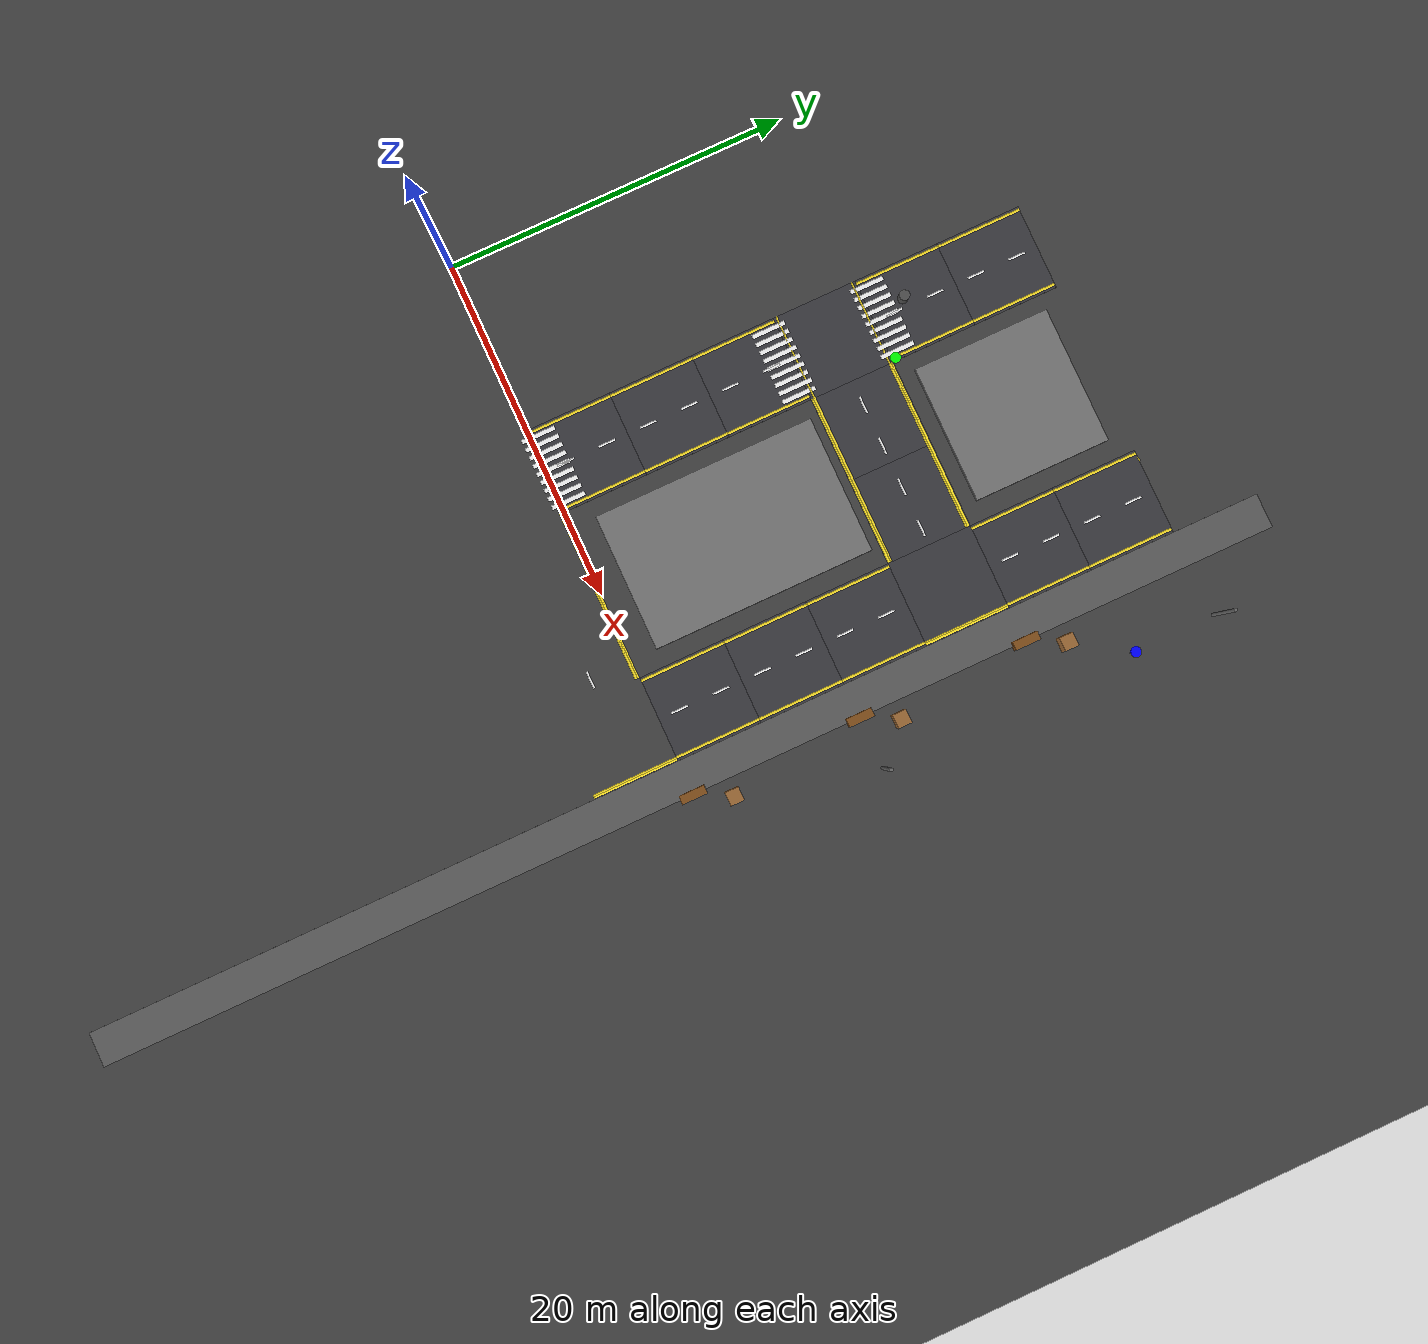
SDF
<sdf version="1.7">
 <world name="compact_city">
  <model name="ground_plane">
   <static>1</static>
   <pose>0 0 0.01 0 -0 0</pose>
   <link name="link">
    <collision name="collision">
     <geometry><plane><normal>0 0 1</normal><size>200 200</size></plane></geometry>
    </collision>
    <visual name="visual">
     <geometry><plane><normal>0 0 1</normal><size>200 200</size></plane></geometry>
     <material>
      <ambient>0.2 0.2 0.2 1</ambient>
      <diffuse>0.25 0.25 0.25 1</diffuse>
      <specular>0.1 0.1 0.1 1</specular>
     </material>
    </visual>
   </link>
  </model>
  <model name="road_tile_15">
   <static>1</static>
   <pose>12.5 27.5 0.015 0 -0 1.5708</pose>
   <link name="link">
    <collision name="collision"><geometry><box><size>5 5 0.03</size></box></geometry></collision>
    <visual name="visual">
     <geometry><box><size>5 5 0.03</size></box></geometry>
     <material>
      <ambient>0.18 0.18 0.2 1</ambient>
      <diffuse>0.22 0.22 0.24 1</diffuse>
      <specular>0.1 0.1 0.1 1</specular>
     </material>
    </visual>
   </link>
  </model>
  <model name="road_tile_16">
   <static>1</static>
   <pose>27.5 27.5 0.015 0 -0 1.5708</pose>
   <link name="link">
    <collision name="collision"><geometry><box><size>5 5 0.03</size></box></geometry></collision>
    <visual name="visual">
     <geometry><box><size>5 5 0.03</size></box></geometry>
     <material>
      <ambient>0.18 0.18 0.2 1</ambient>
      <diffuse>0.22 0.22 0.24 1</diffuse>
      <specular>0.1 0.1 0.1 1</specular>
     </material>
    </visual>
   </link>
  </model>
  <model name="road_tile_19">
   <static>1</static>
   <pose>12.5 22.5 0.015 0 -0 1.5708</pose>
   <link name="link">
    <collision name="collision"><geometry><box><size>5 5 0.03</size></box></geometry></collision>
    <visual name="visual">
     <geometry><box><size>5 5 0.03</size></box></geometry>
     <material>
      <ambient>0.18 0.18 0.2 1</ambient>
      <diffuse>0.22 0.22 0.24 1</diffuse>
      <specular>0.1 0.1 0.1 1</specular>
     </material>
    </visual>
   </link>
  </model>
  <model name="road_tile_20">
   <static>1</static>
   <pose>27.5 22.5 0.015 0 -0 1.5708</pose>
   <link name="link">
    <collision name="collision"><geometry><box><size>5 5 0.03</size></box></geometry></collision>
    <visual name="visual">
     <geometry><box><size>5 5 0.03</size></box></geometry>
     <material>
      <ambient>0.18 0.18 0.2 1</ambient>
      <diffuse>0.22 0.22 0.24 1</diffuse>
      <specular>0.1 0.1 0.1 1</specular>
     </material>
    </visual>
   </link>
  </model>
  <model name="road_tile_29">
   <static>1</static>
   <pose>12.5 17.5 0.015 0 -0 0</pose>
   <link name="link">
    <collision name="collision"><geometry><box><size>5 5 0.03</size></box></geometry></collision>
    <visual name="visual">
     <geometry><box><size>5 5 0.03</size></box></geometry>
     <material>
      <ambient>0.18 0.18 0.2 1</ambient>
      <diffuse>0.22 0.22 0.24 1</diffuse>
      <specular>0.1 0.1 0.1 1</specular>
     </material>
    </visual>
   </link>
  </model>
  <model name="road_tile_30">
   <static>1</static>
   <pose>17.5 17.5 0.015 0 -0 0</pose>
   <link name="link">
    <collision name="collision"><geometry><box><size>5 5 0.03</size></box></geometry></collision>
    <visual name="visual">
     <geometry><box><size>5 5 0.03</size></box></geometry>
     <material>
      <ambient>0.18 0.18 0.2 1</ambient>
      <diffuse>0.22 0.22 0.24 1</diffuse>
      <specular>0.1 0.1 0.1 1</specular>
     </material>
    </visual>
   </link>
  </model>
  <model name="road_tile_31">
   <static>1</static>
   <pose>22.5 17.5 0.015 0 -0 0</pose>
   <link name="link">
    <collision name="collision"><geometry><box><size>5 5 0.03</size></box></geometry></collision>
    <visual name="visual">
     <geometry><box><size>5 5 0.03</size></box></geometry>
     <material>
      <ambient>0.18 0.18 0.2 1</ambient>
      <diffuse>0.22 0.22 0.24 1</diffuse>
      <specular>0.1 0.1 0.1 1</specular>
     </material>
    </visual>
   </link>
  </model>
  <model name="road_tile_32">
   <static>1</static>
   <pose>27.5 17.5 0.015 0 -0 0</pose>
   <link name="link">
    <collision name="collision"><geometry><box><size>5 5 0.03</size></box></geometry></collision>
    <visual name="visual">
     <geometry><box><size>5 5 0.03</size></box></geometry>
     <material>
      <ambient>0.18 0.18 0.2 1</ambient>
      <diffuse>0.22 0.22 0.24 1</diffuse>
      <specular>0.1 0.1 0.1 1</specular>
     </material>
    </visual>
   </link>
  </model>
  <model name="road_tile_35">
   <static>1</static>
   <pose>12.5 12.5 0.015 0 -0 1.5708</pose>
   <link name="link">
    <collision name="collision"><geometry><box><size>5 5 0.03</size></box></geometry></collision>
    <visual name="visual">
     <geometry><box><size>5 5 0.03</size></box></geometry>
     <material>
      <ambient>0.18 0.18 0.2 1</ambient>
      <diffuse>0.22 0.22 0.24 1</diffuse>
      <specular>0.1 0.1 0.1 1</specular>
     </material>
    </visual>
   </link>
  </model>
  <model name="road_tile_36">
   <static>1</static>
   <pose>27.5 12.5 0.015 0 -0 1.5708</pose>
   <link name="link">
    <collision name="collision"><geometry><box><size>5 5 0.03</size></box></geometry></collision>
    <visual name="visual">
     <geometry><box><size>5 5 0.03</size></box></geometry>
     <material>
      <ambient>0.18 0.18 0.2 1</ambient>
      <diffuse>0.22 0.22 0.24 1</diffuse>
      <specular>0.1 0.1 0.1 1</specular>
     </material>
    </visual>
   </link>
  </model>
  <model name="road_tile_39">
   <static>1</static>
   <pose>12.5 7.5 0.015 0 -0 1.5708</pose>
   <link name="link">
    <collision name="collision"><geometry><box><size>5 5 0.03</size></box></geometry></collision>
    <visual name="visual">
     <geometry><box><size>5 5 0.03</size></box></geometry>
     <material>
      <ambient>0.18 0.18 0.2 1</ambient>
      <diffuse>0.22 0.22 0.24 1</diffuse>
      <specular>0.1 0.1 0.1 1</specular>
     </material>
    </visual>
   </link>
  </model>
  <model name="road_tile_40">
   <static>1</static>
   <pose>27.5 7.5 0.015 0 -0 1.5708</pose>
   <link name="link">
    <collision name="collision"><geometry><box><size>5 5 0.03</size></box></geometry></collision>
    <visual name="visual">
     <geometry><box><size>5 5 0.03</size></box></geometry>
     <material>
      <ambient>0.18 0.18 0.2 1</ambient>
      <diffuse>0.22 0.22 0.24 1</diffuse>
      <specular>0.1 0.1 0.1 1</specular>
     </material>
    </visual>
   </link>
  </model>
  <model name="road_tile_43">
   <static>1</static>
   <pose>12.5 2.5 0.015 0 -0 1.5708</pose>
   <link name="link">
    <collision name="collision"><geometry><box><size>5 5 0.03</size></box></geometry></collision>
    <visual name="visual">
     <geometry><box><size>5 5 0.03</size></box></geometry>
     <material>
      <ambient>0.18 0.18 0.2 1</ambient>
      <diffuse>0.22 0.22 0.24 1</diffuse>
      <specular>0.1 0.1 0.1 1</specular>
     </material>
    </visual>
   </link>
  </model>
  <model name="road_tile_44">
   <static>1</static>
   <pose>27.5 2.5 0.015 0 -0 1.5708</pose>
   <link name="link">
    <collision name="collision"><geometry><box><size>5 5 0.03</size></box></geometry></collision>
    <visual name="visual">
     <geometry><box><size>5 5 0.03</size></box></geometry>
     <material>
      <ambient>0.18 0.18 0.2 1</ambient>
      <diffuse>0.22 0.22 0.24 1</diffuse>
      <specular>0.1 0.1 0.1 1</specular>
     </material>
    </visual>
   </link>
  </model>
  <model name="sidewalk_east">
   <static>1</static>
   <pose>31 0 0.15 0 -0 0</pose>
   <link name="link">
    <collision name="collision"><geometry><box><size>2 70 0.3</size></box></geometry></collision>
    <visual name="visual">
     <geometry><box><size>2 70 0.3</size></box></geometry>
     <material>
      <ambient>0.3 0.3 0.3 1</ambient>
      <diffuse>0.35 0.35 0.35 1</diffuse>
      <specular>0.1 0.1 0.1 1</specular>
     </material>
    </visual>
   </link>
  </model>
  <model name="sidewalk_area_top_right">
   <static>1</static>
   <pose>19.9106 24.8735 0.2 0 -0 0</pose>
   <link name="link">
    <collision name="collision"><geometry><box><size>8 8 0.4</size></box></geometry></collision>
    <visual name="visual">
     <geometry><box><size>8 8 0.4</size></box></geometry>
     <material>
      <ambient>0.4 0.4 0.4 1</ambient>
      <diffuse>0.45 0.45 0.45 1</diffuse>
      <specular>0.2 0.2 0.2 1</specular>
     </material>
    </visual>
   </link>
  </model>
  <model name="sidewalk_area_mid_right">
   <static>1</static>
   <pose>19.9746 7.97936 0.2 0 -0 0</pose>
   <link name="link">
    <collision name="collision"><geometry><box><size>8 13 0.4</size></box></geometry></collision>
    <visual name="visual">
     <geometry><box><size>8 13 0.4</size></box></geometry>
     <material>
      <ambient>0.4 0.4 0.4 1</ambient>
      <diffuse>0.45 0.45 0.45 1</diffuse>
      <specular>0.2 0.2 0.2 1</specular>
     </material>
    </visual>
   </link>
  </model>
  <model name="el_219">
   <static>1</static>
   <pose>10.2 2.5 0.038 0 -0 1.5708</pose>
   <link name="link">
    <visual name="v">
     <geometry><box><size>5 0.15 0.002</size></box></geometry>
     <material><ambient>0.9 0.8 0.1 1</ambient><diffuse>0.95 0.85 0.15 1</diffuse></material>
    </visual>
   </link>
  </model>
  <model name="el_220">
   <static>1</static>
   <pose>14.8 2.5 0.038 0 -0 1.5708</pose>
   <link name="link">
    <visual name="v">
     <geometry><box><size>5 0.15 0.002</size></box></geometry>
     <material><ambient>0.9 0.8 0.1 1</ambient><diffuse>0.95 0.85 0.15 1</diffuse></material>
    </visual>
   </link>
  </model>
  <model name="el_221">
   <static>1</static>
   <pose>10.2 7.5 0.038 0 -0 1.5708</pose>
   <link name="link">
    <visual name="v">
     <geometry><box><size>5 0.15 0.002</size></box></geometry>
     <material><ambient>0.9 0.8 0.1 1</ambient><diffuse>0.95 0.85 0.15 1</diffuse></material>
    </visual>
   </link>
  </model>
  <model name="el_222">
   <static>1</static>
   <pose>14.8 7.5 0.038 0 -0 1.5708</pose>
   <link name="link">
    <visual name="v">
     <geometry><box><size>5 0.15 0.002</size></box></geometry>
     <material><ambient>0.9 0.8 0.1 1</ambient><diffuse>0.95 0.85 0.15 1</diffuse></material>
    </visual>
   </link>
  </model>
  <model name="el_223">
   <static>1</static>
   <pose>10.2 12.5 0.038 0 -0 1.5708</pose>
   <link name="link">
    <visual name="v">
     <geometry><box><size>5 0.15 0.002</size></box></geometry>
     <material><ambient>0.9 0.8 0.1 1</ambient><diffuse>0.95 0.85 0.15 1</diffuse></material>
    </visual>
   </link>
  </model>
  <model name="el_224">
   <static>1</static>
   <pose>14.8 12.5 0.038 0 -0 1.5708</pose>
   <link name="link">
    <visual name="v">
     <geometry><box><size>5 0.15 0.002</size></box></geometry>
     <material><ambient>0.9 0.8 0.1 1</ambient><diffuse>0.95 0.85 0.15 1</diffuse></material>
    </visual>
   </link>
  </model>
  <model name="el_225">
   <static>1</static>
   <pose>10.2 22.5 0.038 0 -0 1.5708</pose>
   <link name="link">
    <visual name="v">
     <geometry><box><size>5 0.15 0.002</size></box></geometry>
     <material><ambient>0.9 0.8 0.1 1</ambient><diffuse>0.95 0.85 0.15 1</diffuse></material>
    </visual>
   </link>
  </model>
  <model name="el_226">
   <static>1</static>
   <pose>14.8 22.5 0.038 0 -0 1.5708</pose>
   <link name="link">
    <visual name="v">
     <geometry><box><size>5 0.15 0.002</size></box></geometry>
     <material><ambient>0.9 0.8 0.1 1</ambient><diffuse>0.95 0.85 0.15 1</diffuse></material>
    </visual>
   </link>
  </model>
  <model name="el_227">
   <static>1</static>
   <pose>10.2 27.5 0.038 0 -0 1.5708</pose>
   <link name="link">
    <visual name="v">
     <geometry><box><size>5 0.15 0.002</size></box></geometry>
     <material><ambient>0.9 0.8 0.1 1</ambient><diffuse>0.95 0.85 0.15 1</diffuse></material>
    </visual>
   </link>
  </model>
  <model name="el_228">
   <static>1</static>
   <pose>14.8 27.5 0.038 0 -0 1.5708</pose>
   <link name="link">
    <visual name="v">
     <geometry><box><size>5 0.15 0.002</size></box></geometry>
     <material><ambient>0.9 0.8 0.1 1</ambient><diffuse>0.95 0.85 0.15 1</diffuse></material>
    </visual>
   </link>
  </model>
  <model name="el_232">
   <static>1</static>
   <pose>17.5 -0.2 0.038 0 -0 0</pose>
   <link name="link">
    <visual name="v">
     <geometry><box><size>5 0.15 0.002</size></box></geometry>
     <material><ambient>0.9 0.8 0.1 1</ambient><diffuse>0.95 0.85 0.15 1</diffuse></material>
    </visual>
   </link>
  </model>
  <model name="el_233">
   <static>1</static>
   <pose>17.5 15.2 0.038 0 -0 0</pose>
   <link name="link">
    <visual name="v">
     <geometry><box><size>5 0.15 0.002</size></box></geometry>
     <material><ambient>0.9 0.8 0.1 1</ambient><diffuse>0.95 0.85 0.15 1</diffuse></material>
    </visual>
   </link>
  </model>
  <model name="el_234">
   <static>1</static>
   <pose>17.5 19.8 0.038 0 -0 0</pose>
   <link name="link">
    <visual name="v">
     <geometry><box><size>5 0.15 0.002</size></box></geometry>
     <material><ambient>0.9 0.8 0.1 1</ambient><diffuse>0.95 0.85 0.15 1</diffuse></material>
    </visual>
   </link>
  </model>
  <model name="el_240">
   <static>1</static>
   <pose>22.5 -0.2 0.038 0 -0 0</pose>
   <link name="link">
    <visual name="v">
     <geometry><box><size>5 0.15 0.002</size></box></geometry>
     <material><ambient>0.9 0.8 0.1 1</ambient><diffuse>0.95 0.85 0.15 1</diffuse></material>
    </visual>
   </link>
  </model>
  <model name="el_241">
   <static>1</static>
   <pose>22.5 15.2 0.038 0 -0 0</pose>
   <link name="link">
    <visual name="v">
     <geometry><box><size>5 0.15 0.002</size></box></geometry>
     <material><ambient>0.9 0.8 0.1 1</ambient><diffuse>0.95 0.85 0.15 1</diffuse></material>
    </visual>
   </link>
  </model>
  <model name="el_242">
   <static>1</static>
   <pose>22.5 19.8 0.038 0 -0 0</pose>
   <link name="link">
    <visual name="v">
     <geometry><box><size>5 0.15 0.002</size></box></geometry>
     <material><ambient>0.9 0.8 0.1 1</ambient><diffuse>0.95 0.85 0.15 1</diffuse></material>
    </visual>
   </link>
  </model>
  <model name="el_251">
   <static>1</static>
   <pose>25.2 2.5 0.038 0 -0 1.5708</pose>
   <link name="link">
    <visual name="v">
     <geometry><box><size>5 0.15 0.002</size></box></geometry>
     <material><ambient>0.9 0.8 0.1 1</ambient><diffuse>0.95 0.85 0.15 1</diffuse></material>
    </visual>
   </link>
  </model>
  <model name="el_252">
   <static>1</static>
   <pose>29.8 2.5 0.038 0 -0 1.5708</pose>
   <link name="link">
    <visual name="v">
     <geometry><box><size>5 0.15 0.002</size></box></geometry>
     <material><ambient>0.9 0.8 0.1 1</ambient><diffuse>0.95 0.85 0.15 1</diffuse></material>
    </visual>
   </link>
  </model>
  <model name="el_253">
   <static>1</static>
   <pose>25.2 7.5 0.038 0 -0 1.5708</pose>
   <link name="link">
    <visual name="v">
     <geometry><box><size>5 0.15 0.002</size></box></geometry>
     <material><ambient>0.9 0.8 0.1 1</ambient><diffuse>0.95 0.85 0.15 1</diffuse></material>
    </visual>
   </link>
  </model>
  <model name="el_254">
   <static>1</static>
   <pose>29.8 7.5 0.038 0 -0 1.5708</pose>
   <link name="link">
    <visual name="v">
     <geometry><box><size>5 0.15 0.002</size></box></geometry>
     <material><ambient>0.9 0.8 0.1 1</ambient><diffuse>0.95 0.85 0.15 1</diffuse></material>
    </visual>
   </link>
  </model>
  <model name="el_255">
   <static>1</static>
   <pose>25.2 12.5 0.038 0 -0 1.5708</pose>
   <link name="link">
    <visual name="v">
     <geometry><box><size>5 0.15 0.002</size></box></geometry>
     <material><ambient>0.9 0.8 0.1 1</ambient><diffuse>0.95 0.85 0.15 1</diffuse></material>
    </visual>
   </link>
  </model>
  <model name="el_256">
   <static>1</static>
   <pose>29.8 12.5 0.038 0 -0 1.5708</pose>
   <link name="link">
    <visual name="v">
     <geometry><box><size>5 0.15 0.002</size></box></geometry>
     <material><ambient>0.9 0.8 0.1 1</ambient><diffuse>0.95 0.85 0.15 1</diffuse></material>
    </visual>
   </link>
  </model>
  <model name="el_257">
   <static>1</static>
   <pose>25.2 22.5 0.038 0 -0 1.5708</pose>
   <link name="link">
    <visual name="v">
     <geometry><box><size>5 0.15 0.002</size></box></geometry>
     <material><ambient>0.9 0.8 0.1 1</ambient><diffuse>0.95 0.85 0.15 1</diffuse></material>
    </visual>
   </link>
  </model>
  <model name="el_258">
   <static>1</static>
   <pose>29.8 22.5 0.038 0 -0 1.5708</pose>
   <link name="link">
    <visual name="v">
     <geometry><box><size>5 0.15 0.002</size></box></geometry>
     <material><ambient>0.9 0.8 0.1 1</ambient><diffuse>0.95 0.85 0.15 1</diffuse></material>
    </visual>
   </link>
  </model>
  <model name="el_259">
   <static>1</static>
   <pose>25.2 27.5 0.038 0 -0 1.5708</pose>
   <link name="link">
    <visual name="v">
     <geometry><box><size>5 0.15 0.002</size></box></geometry>
     <material><ambient>0.9 0.8 0.1 1</ambient><diffuse>0.95 0.85 0.15 1</diffuse></material>
    </visual>
   </link>
  </model>
  <model name="el_260">
   <static>1</static>
   <pose>29.8 27.5 0.038 0 -0 1.5708</pose>
   <link name="link">
    <visual name="v">
     <geometry><box><size>5 0.15 0.002</size></box></geometry>
     <material><ambient>0.9 0.8 0.1 1</ambient><diffuse>0.95 0.85 0.15 1</diffuse></material>
    </visual>
   </link>
  </model>
  <model name="ld_39">
   <static>1</static>
   <pose>12.5000 1.2500 0.038 0 -0 1.5708</pose>
   <link name="link">
    <visual name="v">
     <geometry><box><size>1 0.12 0.002</size></box></geometry>
     <material><ambient>1 1 1 1</ambient><diffuse>0.95 0.95 0.95 1</diffuse></material>
    </visual>
   </link>
  </model>
  <model name="ld_40">
   <static>1</static>
   <pose>12.5000 3.7500 0.038 0 -0 1.5708</pose>
   <link name="link">
    <visual name="v">
     <geometry><box><size>1 0.12 0.002</size></box></geometry>
     <material><ambient>1 1 1 1</ambient><diffuse>0.95 0.95 0.95 1</diffuse></material>
    </visual>
   </link>
  </model>
  <model name="ld_41">
   <static>1</static>
   <pose>12.5000 6.2500 0.038 0 -0 1.5708</pose>
   <link name="link">
    <visual name="v">
     <geometry><box><size>1 0.12 0.002</size></box></geometry>
     <material><ambient>1 1 1 1</ambient><diffuse>0.95 0.95 0.95 1</diffuse></material>
    </visual>
   </link>
  </model>
  <model name="ld_42">
   <static>1</static>
   <pose>12.5000 8.7500 0.038 0 -0 1.5708</pose>
   <link name="link">
    <visual name="v">
     <geometry><box><size>1 0.12 0.002</size></box></geometry>
     <material><ambient>1 1 1 1</ambient><diffuse>0.95 0.95 0.95 1</diffuse></material>
    </visual>
   </link>
  </model>
  <model name="ld_43">
   <static>1</static>
   <pose>12.5000 11.2500 0.038 0 -0 1.5708</pose>
   <link name="link">
    <visual name="v">
     <geometry><box><size>1 0.12 0.002</size></box></geometry>
     <material><ambient>1 1 1 1</ambient><diffuse>0.95 0.95 0.95 1</diffuse></material>
    </visual>
   </link>
  </model>
  <model name="ld_44">
   <static>1</static>
   <pose>12.5000 13.7500 0.038 0 -0 1.5708</pose>
   <link name="link">
    <visual name="v">
     <geometry><box><size>1 0.12 0.002</size></box></geometry>
     <material><ambient>1 1 1 1</ambient><diffuse>0.95 0.95 0.95 1</diffuse></material>
    </visual>
   </link>
  </model>
  <model name="ld_45">
   <static>1</static>
   <pose>12.5000 21.2500 0.038 0 -0 1.5708</pose>
   <link name="link">
    <visual name="v">
     <geometry><box><size>1 0.12 0.002</size></box></geometry>
     <material><ambient>1 1 1 1</ambient><diffuse>0.95 0.95 0.95 1</diffuse></material>
    </visual>
   </link>
  </model>
  <model name="ld_46">
   <static>1</static>
   <pose>12.5000 23.7500 0.038 0 -0 1.5708</pose>
   <link name="link">
    <visual name="v">
     <geometry><box><size>1 0.12 0.002</size></box></geometry>
     <material><ambient>1 1 1 1</ambient><diffuse>0.95 0.95 0.95 1</diffuse></material>
    </visual>
   </link>
  </model>
  <model name="ld_47">
   <static>1</static>
   <pose>12.5000 26.2500 0.038 0 -0 1.5708</pose>
   <link name="link">
    <visual name="v">
     <geometry><box><size>1 0.12 0.002</size></box></geometry>
     <material><ambient>1 1 1 1</ambient><diffuse>0.95 0.95 0.95 1</diffuse></material>
    </visual>
   </link>
  </model>
  <model name="ld_48">
   <static>1</static>
   <pose>12.5000 28.7500 0.038 0 -0 1.5708</pose>
   <link name="link">
    <visual name="v">
     <geometry><box><size>1 0.12 0.002</size></box></geometry>
     <material><ambient>1 1 1 1</ambient><diffuse>0.95 0.95 0.95 1</diffuse></material>
    </visual>
   </link>
  </model>
  <model name="ld_55">
   <static>1</static>
   <pose>27.5000 1.2500 0.038 0 -0 1.5708</pose>
   <link name="link">
    <visual name="v">
     <geometry><box><size>1 0.12 0.002</size></box></geometry>
     <material><ambient>1 1 1 1</ambient><diffuse>0.95 0.95 0.95 1</diffuse></material>
    </visual>
   </link>
  </model>
  <model name="ld_56">
   <static>1</static>
   <pose>27.5000 3.7500 0.038 0 -0 1.5708</pose>
   <link name="link">
    <visual name="v">
     <geometry><box><size>1 0.12 0.002</size></box></geometry>
     <material><ambient>1 1 1 1</ambient><diffuse>0.95 0.95 0.95 1</diffuse></material>
    </visual>
   </link>
  </model>
  <model name="ld_57">
   <static>1</static>
   <pose>27.5000 6.2500 0.038 0 -0 1.5708</pose>
   <link name="link">
    <visual name="v">
     <geometry><box><size>1 0.12 0.002</size></box></geometry>
     <material><ambient>1 1 1 1</ambient><diffuse>0.95 0.95 0.95 1</diffuse></material>
    </visual>
   </link>
  </model>
  <model name="ld_58">
   <static>1</static>
   <pose>27.5000 8.7500 0.038 0 -0 1.5708</pose>
   <link name="link">
    <visual name="v">
     <geometry><box><size>1 0.12 0.002</size></box></geometry>
     <material><ambient>1 1 1 1</ambient><diffuse>0.95 0.95 0.95 1</diffuse></material>
    </visual>
   </link>
  </model>
  <model name="ld_59">
   <static>1</static>
   <pose>27.5000 11.2500 0.038 0 -0 1.5708</pose>
   <link name="link">
    <visual name="v">
     <geometry><box><size>1 0.12 0.002</size></box></geometry>
     <material><ambient>1 1 1 1</ambient><diffuse>0.95 0.95 0.95 1</diffuse></material>
    </visual>
   </link>
  </model>
  <model name="ld_60">
   <static>1</static>
   <pose>27.5000 13.7500 0.038 0 -0 1.5708</pose>
   <link name="link">
    <visual name="v">
     <geometry><box><size>1 0.12 0.002</size></box></geometry>
     <material><ambient>1 1 1 1</ambient><diffuse>0.95 0.95 0.95 1</diffuse></material>
    </visual>
   </link>
  </model>
  <model name="ld_61">
   <static>1</static>
   <pose>27.5000 21.2500 0.038 0 -0 1.5708</pose>
   <link name="link">
    <visual name="v">
     <geometry><box><size>1 0.12 0.002</size></box></geometry>
     <material><ambient>1 1 1 1</ambient><diffuse>0.95 0.95 0.95 1</diffuse></material>
    </visual>
   </link>
  </model>
  <model name="ld_62">
   <static>1</static>
   <pose>27.5000 23.7500 0.038 0 -0 1.5708</pose>
   <link name="link">
    <visual name="v">
     <geometry><box><size>1 0.12 0.002</size></box></geometry>
     <material><ambient>1 1 1 1</ambient><diffuse>0.95 0.95 0.95 1</diffuse></material>
    </visual>
   </link>
  </model>
  <model name="ld_63">
   <static>1</static>
   <pose>27.5000 26.2500 0.038 0 -0 1.5708</pose>
   <link name="link">
    <visual name="v">
     <geometry><box><size>1 0.12 0.002</size></box></geometry>
     <material><ambient>1 1 1 1</ambient><diffuse>0.95 0.95 0.95 1</diffuse></material>
    </visual>
   </link>
  </model>
  <model name="ld_64">
   <static>1</static>
   <pose>27.5000 28.7500 0.038 0 -0 1.5708</pose>
   <link name="link">
    <visual name="v">
     <geometry><box><size>1 0.12 0.002</size></box></geometry>
     <material><ambient>1 1 1 1</ambient><diffuse>0.95 0.95 0.95 1</diffuse></material>
    </visual>
   </link>
  </model>
  <model name="ld_97">
   <static>1</static>
   <pose>16.5000 17.5000 0.038 0 0 0</pose>
   <link name="link">
    <visual name="v">
     <geometry><box><size>1 0.12 0.002</size></box></geometry>
     <material><ambient>1 1 1 1</ambient><diffuse>0.95 0.95 0.95 1</diffuse></material>
    </visual>
   </link>
  </model>
  <model name="ld_98">
   <static>1</static>
   <pose>19.0000 17.5000 0.038 0 0 0</pose>
   <link name="link">
    <visual name="v">
     <geometry><box><size>1 0.12 0.002</size></box></geometry>
     <material><ambient>1 1 1 1</ambient><diffuse>0.95 0.95 0.95 1</diffuse></material>
    </visual>
   </link>
  </model>
  <model name="ld_99">
   <static>1</static>
   <pose>21.5000 17.5000 0.038 0 0 0</pose>
   <link name="link">
    <visual name="v">
     <geometry><box><size>1 0.12 0.002</size></box></geometry>
     <material><ambient>1 1 1 1</ambient><diffuse>0.95 0.95 0.95 1</diffuse></material>
    </visual>
   </link>
  </model>
  <model name="ld_100">
   <static>1</static>
   <pose>24.0000 17.5000 0.038 0 0 0</pose>
   <link name="link">
    <visual name="v">
     <geometry><box><size>1 0.12 0.002</size></box></geometry>
     <material><ambient>1 1 1 1</ambient><diffuse>0.95 0.95 0.95 1</diffuse></material>
    </visual>
   </link>
  </model>
  <model name="ld_116">
   <static>1</static>
   <pose>24.0000 -2.5000 0.038 0 0 0</pose>
   <link name="link">
    <visual name="v">
     <geometry><box><size>1 0.12 0.002</size></box></geometry>
     <material><ambient>1 1 1 1</ambient><diffuse>0.95 0.95 0.95 1</diffuse></material>
    </visual>
   </link>
  </model>
  <model name="ie_320">
   <static>1</static>
   <pose>12.5 -0.2 0.038 0 -0 0</pose>
   <link name="link">
    <visual name="v">
     <geometry><box><size>5 0.1 0.002</size></box></geometry>
     <material><ambient>0.9 0.8 0.1 1</ambient><diffuse>0.95 0.85 0.15 1</diffuse></material>
    </visual>
   </link>
  </model>
  <model name="ie_328">
   <static>1</static>
   <pose>12.5 15.2 0.038 0 -0 0</pose>
   <link name="link">
    <visual name="v">
     <geometry><box><size>5 0.1 0.002</size></box></geometry>
     <material><ambient>0.9 0.8 0.1 1</ambient><diffuse>0.95 0.85 0.15 1</diffuse></material>
    </visual>
   </link>
  </model>
  <model name="ie_329">
   <static>1</static>
   <pose>12.5 19.8 0.038 0 -0 0</pose>
   <link name="link">
    <visual name="v">
     <geometry><box><size>5 0.1 0.002</size></box></geometry>
     <material><ambient>0.9 0.8 0.1 1</ambient><diffuse>0.95 0.85 0.15 1</diffuse></material>
    </visual>
   </link>
  </model>
  <model name="ie_344">
   <static>1</static>
   <pose>29.8 -2.5 0.038 0 -0 1.5708</pose>
   <link name="link">
    <visual name="v">
     <geometry><box><size>5 0.1 0.002</size></box></geometry>
     <material><ambient>0.9 0.8 0.1 1</ambient><diffuse>0.95 0.85 0.15 1</diffuse></material>
    </visual>
   </link>
  </model>
  <model name="ie_350">
   <static>1</static>
   <pose>29.8 17.5 0.038 0 -0 1.5708</pose>
   <link name="link">
    <visual name="v">
     <geometry><box><size>5 0.1 0.002</size></box></geometry>
     <material><ambient>0.9 0.8 0.1 1</ambient><diffuse>0.95 0.85 0.15 1</diffuse></material>
    </visual>
   </link>
  </model>
  <model name="ai_450">
   <static>1</static>
   <pose>25.4997 30.0164 0.038 0 -0 1.6035</pose>
   <link name="link">
    <visual name="v">
     <geometry><box><size>0.04 0.15 0.002</size></box></geometry>
     <material><ambient>0.9 0.8 0.1 1</ambient><diffuse>0.95 0.85 0.15 1</diffuse></material>
    </visual>
   </link>
  </model>
  <model name="traffic_sign_4">
   <static>1</static>
   <pose>15 20 1.5 0 0 -1.57</pose>
   <link name="link">
    <collision name="collision">
     <geometry><cylinder><radius>0.3</radius><length>0.05</length></cylinder></geometry>
    </collision>
    <visual name="visual">
     <geometry><cylinder><radius>0.3</radius><length>0.05</length></cylinder></geometry>
     <material><ambient>0 1 0 1</ambient><diffuse>0 1 0 1</diffuse></material>
    </visual>
    <collision name="pole_col">
     <pose>0 0 -0.75 0 -0 0</pose>
     <geometry><cylinder><radius>0.05</radius><length>1.5</length></cylinder></geometry>
    </collision>
    <visual name="pole">
     <pose>0 0 -0.75 0 -0 0</pose>
     <geometry><cylinder><radius>0.05</radius><length>1.5</length></cylinder></geometry>
     <material><ambient>0.5 0.5 0.5 1</ambient><diffuse>0.5 0.5 0.5 1</diffuse></material>
    </visual>
   </link>
  </model>
  <model name="bin_4">
   <static>1</static>
   <pose>12 22 0.5 0 -0 0</pose>
   <link name="link">
    <collision name="collision">
     <geometry><cylinder><radius>0.3</radius><length>1</length></cylinder></geometry>
    </collision>
    <visual name="visual">
     <geometry><cylinder><radius>0.3</radius><length>1</length></cylinder></geometry>
     <material><ambient>0.2 0.2 0.2 1</ambient><diffuse>0.3 0.3 0.3 1</diffuse></material>
    </visual>
   </link>
  </model>
  <model name="bench_8">
   <static>1</static>
   <pose>32 20 0.4 0 0 -1.57</pose>
   <link name="link">
    <collision name="collision"><geometry><box><size>1.5 0.5 0.8</size></box></geometry></collision>
    <visual name="visual">
     <geometry><box><size>1.5 0.5 0.8</size></box></geometry>
     <material><ambient>0.5 0.3 0.1 1</ambient><diffuse>0.5 0.3 0.1 1</diffuse></material>
    </visual>
   </link>
  </model>
  <model name="bench_9">
   <static>1</static>
   <pose>32 10 0.4 0 0 -1.57</pose>
   <link name="link">
    <collision name="collision"><geometry><box><size>1.5 0.5 0.8</size></box></geometry></collision>
    <visual name="visual">
     <geometry><box><size>1.5 0.5 0.8</size></box></geometry>
     <material><ambient>0.5 0.3 0.1 1</ambient><diffuse>0.5 0.3 0.1 1</diffuse></material>
    </visual>
   </link>
  </model>
  <model name="bench_10">
   <static>1</static>
   <pose>32 0 0.4 0 0 -1.57</pose>
   <link name="link">
    <collision name="collision"><geometry><box><size>1.5 0.5 0.8</size></box></geometry></collision>
    <visual name="visual">
     <geometry><box><size>1.5 0.5 0.8</size></box></geometry>
     <material><ambient>0.5 0.3 0.1 1</ambient><diffuse>0.5 0.3 0.1 1</diffuse></material>
    </visual>
   </link>
  </model>
  <model name="sign_7">
   <static>1</static>
   <pose>35 25 1.5 0 0 -1.57</pose>
   <link name="link">
    <collision name="collision">
     <geometry><cylinder><radius>0.3</radius><length>0.05</length></cylinder></geometry>
    </collision>
    <visual name="visual">
     <geometry><cylinder><radius>0.3</radius><length>0.05</length></cylinder></geometry>
     <material><ambient>0 0 1 1</ambient><diffuse>0 0 1 1</diffuse></material>
    </visual>
    <collision name="pole_col">
     <pose>0 0 -0.75 0 -0 0</pose>
     <geometry><cylinder><radius>0.05</radius><length>1.5</length></cylinder></geometry>
    </collision>
    <visual name="pole">
     <pose>0 0 -0.75 0 -0 0</pose>
     <geometry><cylinder><radius>0.05</radius><length>1.5</length></cylinder></geometry>
     <material><ambient>0.5 0.5 0.5 1</ambient><diffuse>0.5 0.5 0.5 1</diffuse></material>
    </visual>
   </link>
  </model>
  <model name="pole_8">
   <static>1</static>
   <pose>35 30 2.5 0 -0 0</pose>
   <link name="link">
    <collision name="collision">
     <geometry><cylinder><radius>0.1</radius><length>5</length></cylinder></geometry>
    </collision>
    <visual name="visual">
     <geometry><cylinder><radius>0.1</radius><length>5</length></cylinder></geometry>
     <material><ambient>0.3 0.3 0.3 1</ambient><diffuse>0.4 0.4 0.4 1</diffuse></material>
    </visual>
   </link>
  </model>
  <model name="pole_9">
   <static>1</static>
   <pose>35 10 2.5 0 -0 0</pose>
   <link name="link">
    <collision name="collision">
     <geometry><cylinder><radius>0.1</radius><length>5</length></cylinder></geometry>
    </collision>
    <visual name="visual">
     <geometry><cylinder><radius>0.1</radius><length>5</length></cylinder></geometry>
     <material><ambient>0.3 0.3 0.3 1</ambient><diffuse>0.4 0.4 0.4 1</diffuse></material>
    </visual>
   </link>
  </model>
  <model name="box_5">
   <static>1</static>
   <pose>33 22 0.6 0 -0 0</pose>
   <link name="link">
    <collision name="collision"><geometry><box><size>0.8 0.8 1.2</size></box></geometry></collision>
    <visual name="visual">
     <geometry><box><size>0.8 0.8 1.2</size></box></geometry>
     <material><ambient>0.6 0.4 0.2 1</ambient><diffuse>0.6 0.4 0.2 1</diffuse></material>
    </visual>
   </link>
  </model>
  <model name="box_6">
   <static>1</static>
   <pose>33 12 0.6 0 -0 0</pose>
   <link name="link">
    <collision name="collision"><geometry><box><size>0.8 0.8 1.2</size></box></geometry></collision>
    <visual name="visual">
     <geometry><box><size>0.8 0.8 1.2</size></box></geometry>
     <material><ambient>0.6 0.4 0.2 1</ambient><diffuse>0.6 0.4 0.2 1</diffuse></material>
    </visual>
   </link>
  </model>
  <model name="box_7">
   <static>1</static>
   <pose>33 2 0.6 0 -0 0</pose>
   <link name="link">
    <collision name="collision"><geometry><box><size>0.8 0.8 1.2</size></box></geometry></collision>
    <visual name="visual">
     <geometry><box><size>0.8 0.8 1.2</size></box></geometry>
     <material><ambient>0.6 0.4 0.2 1</ambient><diffuse>0.6 0.4 0.2 1</diffuse></material>
    </visual>
   </link>
  </model>
  <model name="edge_h_11">
   <static>1</static>
   <pose>20 15.1 0.038 0 -0 0</pose>
   <link name="link">
    <visual name="visual">
     <geometry><box><size>10 0.15 0.002</size></box></geometry>
     <material><ambient>0.95 0.85 0.1 1</ambient><diffuse>1 0.9 0.15 1</diffuse></material>
    </visual>
   </link>
  </model>
  <model name="edge_h_12">
   <static>1</static>
   <pose>20 19.9 0.038 0 -0 0</pose>
   <link name="link">
    <visual name="visual">
     <geometry><box><size>10 0.15 0.002</size></box></geometry>
     <material><ambient>0.95 0.85 0.1 1</ambient><diffuse>1 0.9 0.15 1</diffuse></material>
    </visual>
   </link>
  </model>
  <model name="edge_h_18">
   <static>1</static>
   <pose>20 -0.1 0.038 0 -0 0</pose>
   <link name="link">
    <visual name="visual">
     <geometry><box><size>10 0.15 0.002</size></box></geometry>
     <material><ambient>0.95 0.85 0.1 1</ambient><diffuse>1 0.9 0.15 1</diffuse></material>
    </visual>
   </link>
  </model>
  <model name="arc_in_281">
   <static>1</static>
   <pose>25.5991 30.0235 0.038 0 -0 1.6101</pose>
   <link name="link">
    <visual name="visual">
     <geometry><box><size>0.067112 0.15 0.002</size></box></geometry>
     <material><ambient>0.95 0.85 0.1 1</ambient><diffuse>1 0.9 0.15 1</diffuse></material>
    </visual>
   </link>
  </model>
  <model name="tedge_499">
   <static>1</static>
   <pose>29.9 17.5 0.038 0 -0 1.5708</pose>
   <link name="link">
    <visual name="visual">
     <geometry><box><size>5 0.15 0.002</size></box></geometry>
     <material><ambient>0.95 0.85 0.1 1</ambient><diffuse>1 0.9 0.15 1</diffuse></material>
    </visual>
   </link>
  </model>
  <model name="tedge_500">
   <static>1</static>
   <pose>29.9 -2.5 0.038 0 -0 1.5708</pose>
   <link name="link">
    <visual name="visual">
     <geometry><box><size>5 0.15 0.002</size></box></geometry>
     <material><ambient>0.95 0.85 0.1 1</ambient><diffuse>1 0.9 0.15 1</diffuse></material>
    </visual>
   </link>
  </model>
  <model name="xwalk_591">
   <static>1</static>
   <pose>10.5 20.5 0.038 0 -0 1.5708</pose>
   <link name="link">
    <visual name="visual">
     <geometry><box><size>2 0.25 0.002</size></box></geometry>
     <material><ambient>1 1 1 1</ambient><diffuse>0.95 0.95 0.95 1</diffuse></material>
    </visual>
   </link>
  </model>
  <model name="xwalk_592">
   <static>1</static>
   <pose>11 20.5 0.038 0 -0 1.5708</pose>
   <link name="link">
    <visual name="visual">
     <geometry><box><size>2 0.25 0.002</size></box></geometry>
     <material><ambient>1 1 1 1</ambient><diffuse>0.95 0.95 0.95 1</diffuse></material>
    </visual>
   </link>
  </model>
  <model name="xwalk_593">
   <static>1</static>
   <pose>11.5 20.5 0.038 0 -0 1.5708</pose>
   <link name="link">
    <visual name="visual">
     <geometry><box><size>2 0.25 0.002</size></box></geometry>
     <material><ambient>1 1 1 1</ambient><diffuse>0.95 0.95 0.95 1</diffuse></material>
    </visual>
   </link>
  </model>
  <model name="xwalk_594">
   <static>1</static>
   <pose>12 20.5 0.038 0 -0 1.5708</pose>
   <link name="link">
    <visual name="visual">
     <geometry><box><size>2 0.25 0.002</size></box></geometry>
     <material><ambient>1 1 1 1</ambient><diffuse>0.95 0.95 0.95 1</diffuse></material>
    </visual>
   </link>
  </model>
  <model name="xwalk_595">
   <static>1</static>
   <pose>12.5 20.5 0.038 0 -0 1.5708</pose>
   <link name="link">
    <visual name="visual">
     <geometry><box><size>2 0.25 0.002</size></box></geometry>
     <material><ambient>1 1 1 1</ambient><diffuse>0.95 0.95 0.95 1</diffuse></material>
    </visual>
   </link>
  </model>
  <model name="xwalk_596">
   <static>1</static>
   <pose>13 20.5 0.038 0 -0 1.5708</pose>
   <link name="link">
    <visual name="visual">
     <geometry><box><size>2 0.25 0.002</size></box></geometry>
     <material><ambient>1 1 1 1</ambient><diffuse>0.95 0.95 0.95 1</diffuse></material>
    </visual>
   </link>
  </model>
  <model name="xwalk_597">
   <static>1</static>
   <pose>13.5 20.5 0.038 0 -0 1.5708</pose>
   <link name="link">
    <visual name="visual">
     <geometry><box><size>2 0.25 0.002</size></box></geometry>
     <material><ambient>1 1 1 1</ambient><diffuse>0.95 0.95 0.95 1</diffuse></material>
    </visual>
   </link>
  </model>
  <model name="xwalk_598">
   <static>1</static>
   <pose>14 20.5 0.038 0 -0 1.5708</pose>
   <link name="link">
    <visual name="visual">
     <geometry><box><size>2 0.25 0.002</size></box></geometry>
     <material><ambient>1 1 1 1</ambient><diffuse>0.95 0.95 0.95 1</diffuse></material>
    </visual>
   </link>
  </model>
  <model name="xwalk_599">
   <static>1</static>
   <pose>14.5 20.5 0.038 0 -0 1.5708</pose>
   <link name="link">
    <visual name="visual">
     <geometry><box><size>2 0.25 0.002</size></box></geometry>
     <material><ambient>1 1 1 1</ambient><diffuse>0.95 0.95 0.95 1</diffuse></material>
    </visual>
   </link>
  </model>
  <model name="xwalk_600">
   <static>1</static>
   <pose>10.5 14.5 0.038 0 -0 1.5708</pose>
   <link name="link">
    <visual name="visual">
     <geometry><box><size>2 0.25 0.002</size></box></geometry>
     <material><ambient>1 1 1 1</ambient><diffuse>0.95 0.95 0.95 1</diffuse></material>
    </visual>
   </link>
  </model>
  <model name="xwalk_601">
   <static>1</static>
   <pose>11 14.5 0.038 0 -0 1.5708</pose>
   <link name="link">
    <visual name="visual">
     <geometry><box><size>2 0.25 0.002</size></box></geometry>
     <material><ambient>1 1 1 1</ambient><diffuse>0.95 0.95 0.95 1</diffuse></material>
    </visual>
   </link>
  </model>
  <model name="xwalk_602">
   <static>1</static>
   <pose>11.5 14.5 0.038 0 -0 1.5708</pose>
   <link name="link">
    <visual name="visual">
     <geometry><box><size>2 0.25 0.002</size></box></geometry>
     <material><ambient>1 1 1 1</ambient><diffuse>0.95 0.95 0.95 1</diffuse></material>
    </visual>
   </link>
  </model>
  <model name="xwalk_603">
   <static>1</static>
   <pose>12 14.5 0.038 0 -0 1.5708</pose>
   <link name="link">
    <visual name="visual">
     <geometry><box><size>2 0.25 0.002</size></box></geometry>
     <material><ambient>1 1 1 1</ambient><diffuse>0.95 0.95 0.95 1</diffuse></material>
    </visual>
   </link>
  </model>
  <model name="xwalk_604">
   <static>1</static>
   <pose>12.5 14.5 0.038 0 -0 1.5708</pose>
   <link name="link">
    <visual name="visual">
     <geometry><box><size>2 0.25 0.002</size></box></geometry>
     <material><ambient>1 1 1 1</ambient><diffuse>0.95 0.95 0.95 1</diffuse></material>
    </visual>
   </link>
  </model>
  <model name="xwalk_605">
   <static>1</static>
   <pose>13 14.5 0.038 0 -0 1.5708</pose>
   <link name="link">
    <visual name="visual">
     <geometry><box><size>2 0.25 0.002</size></box></geometry>
     <material><ambient>1 1 1 1</ambient><diffuse>0.95 0.95 0.95 1</diffuse></material>
    </visual>
   </link>
  </model>
  <model name="xwalk_606">
   <static>1</static>
   <pose>13.5 14.5 0.038 0 -0 1.5708</pose>
   <link name="link">
    <visual name="visual">
     <geometry><box><size>2 0.25 0.002</size></box></geometry>
     <material><ambient>1 1 1 1</ambient><diffuse>0.95 0.95 0.95 1</diffuse></material>
    </visual>
   </link>
  </model>
  <model name="xwalk_607">
   <static>1</static>
   <pose>14 14.5 0.038 0 -0 1.5708</pose>
   <link name="link">
    <visual name="visual">
     <geometry><box><size>2 0.25 0.002</size></box></geometry>
     <material><ambient>1 1 1 1</ambient><diffuse>0.95 0.95 0.95 1</diffuse></material>
    </visual>
   </link>
  </model>
  <model name="xwalk_608">
   <static>1</static>
   <pose>14.5 14.5 0.038 0 -0 1.5708</pose>
   <link name="link">
    <visual name="visual">
     <geometry><box><size>2 0.25 0.002</size></box></geometry>
     <material><ambient>1 1 1 1</ambient><diffuse>0.95 0.95 0.95 1</diffuse></material>
    </visual>
   </link>
  </model>
  <model name="xwalk_609">
   <static>1</static>
   <pose>10.5 0.5 0.038 0 -0 1.5708</pose>
   <link name="link">
    <visual name="visual">
     <geometry><box><size>2 0.25 0.002</size></box></geometry>
     <material><ambient>1 1 1 1</ambient><diffuse>0.95 0.95 0.95 1</diffuse></material>
    </visual>
   </link>
  </model>
  <model name="xwalk_610">
   <static>1</static>
   <pose>11 0.5 0.038 0 -0 1.5708</pose>
   <link name="link">
    <visual name="visual">
     <geometry><box><size>2 0.25 0.002</size></box></geometry>
     <material><ambient>1 1 1 1</ambient><diffuse>0.95 0.95 0.95 1</diffuse></material>
    </visual>
   </link>
  </model>
  <model name="xwalk_611">
   <static>1</static>
   <pose>11.5 0.5 0.038 0 -0 1.5708</pose>
   <link name="link">
    <visual name="visual">
     <geometry><box><size>2 0.25 0.002</size></box></geometry>
     <material><ambient>1 1 1 1</ambient><diffuse>0.95 0.95 0.95 1</diffuse></material>
    </visual>
   </link>
  </model>
  <model name="xwalk_612">
   <static>1</static>
   <pose>12 0.5 0.038 0 -0 1.5708</pose>
   <link name="link">
    <visual name="visual">
     <geometry><box><size>2 0.25 0.002</size></box></geometry>
     <material><ambient>1 1 1 1</ambient><diffuse>0.95 0.95 0.95 1</diffuse></material>
    </visual>
   </link>
  </model>
  <model name="xwalk_613">
   <static>1</static>
   <pose>12.5 0.5 0.038 0 -0 1.5708</pose>
   <link name="link">
    <visual name="visual">
     <geometry><box><size>2 0.25 0.002</size></box></geometry>
     <material><ambient>1 1 1 1</ambient><diffuse>0.95 0.95 0.95 1</diffuse></material>
    </visual>
   </link>
  </model>
  <model name="xwalk_614">
   <static>1</static>
   <pose>13 0.5 0.038 0 -0 1.5708</pose>
   <link name="link">
    <visual name="visual">
     <geometry><box><size>2 0.25 0.002</size></box></geometry>
     <material><ambient>1 1 1 1</ambient><diffuse>0.95 0.95 0.95 1</diffuse></material>
    </visual>
   </link>
  </model>
  <model name="xwalk_615">
   <static>1</static>
   <pose>13.5 0.5 0.038 0 -0 1.5708</pose>
   <link name="link">
    <visual name="visual">
     <geometry><box><size>2 0.25 0.002</size></box></geometry>
     <material><ambient>1 1 1 1</ambient><diffuse>0.95 0.95 0.95 1</diffuse></material>
    </visual>
   </link>
  </model>
  <model name="xwalk_616">
   <static>1</static>
   <pose>14 0.5 0.038 0 -0 1.5708</pose>
   <link name="link">
    <visual name="visual">
     <geometry><box><size>2 0.25 0.002</size></box></geometry>
     <material><ambient>1 1 1 1</ambient><diffuse>0.95 0.95 0.95 1</diffuse></material>
    </visual>
   </link>
  </model>
  <model name="xwalk_617">
   <static>1</static>
   <pose>14.5 0.5 0.038 0 -0 1.5708</pose>
   <link name="link">
    <visual name="visual">
     <geometry><box><size>2 0.25 0.002</size></box></geometry>
     <material><ambient>1 1 1 1</ambient><diffuse>0.95 0.95 0.95 1</diffuse></material>
    </visual>
   </link>
  </model>
 </world>
</sdf>
